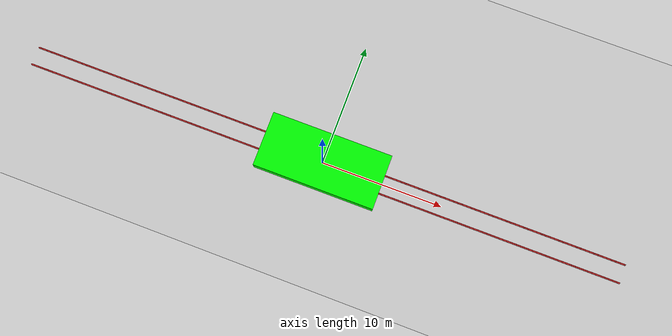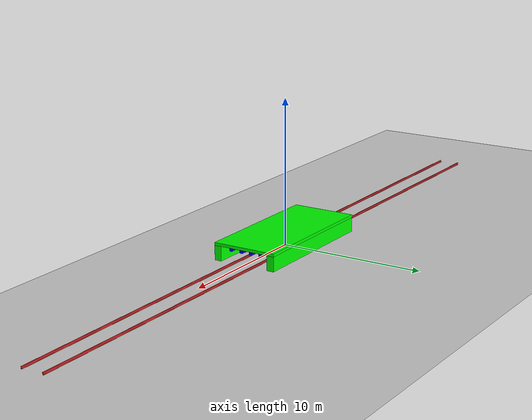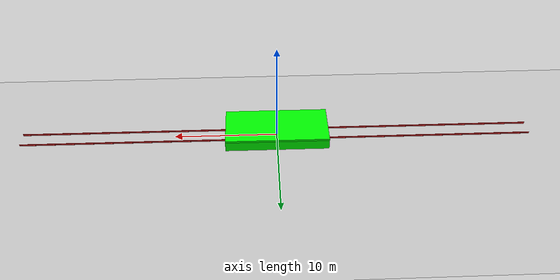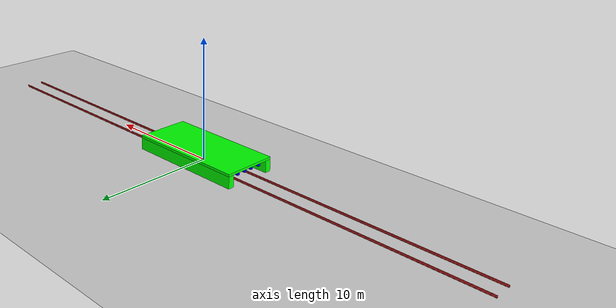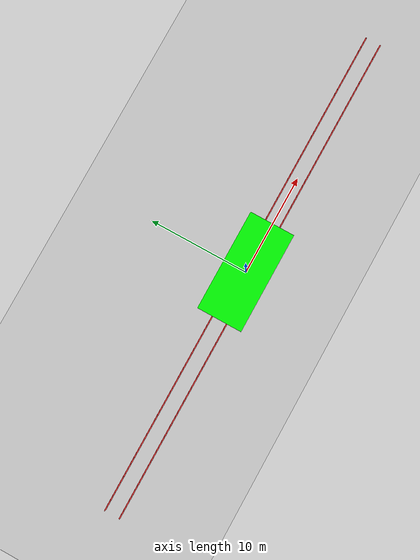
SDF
<sdf version="1.7">
 <world name="default">
  <light name="sun" type="directional">
   <pose>0 0 10 0 -0 0</pose>
   <diffuse>0.8 0.8 0.8 1</diffuse>
   <specular>0.2 0.2 0.2 1</specular>
   <attenuation>
    <range>1000</range>
    <constant>0.9</constant>
    <linear>0.01</linear>
    <quadratic>0.001</quadratic>
   </attenuation>
   <direction>-0.5 0.1 -0.9</direction>
   <spot><inner_angle>0</inner_angle><outer_angle>0</outer_angle><falloff>0</falloff></spot>
  </light>
  <model name="ground_plane">
   <static>1</static>
   <link name="link">
    <collision name="collision">
     <geometry><plane><normal>0 0 1</normal><size>100 100</size></plane></geometry>
     <surface>
      <contact><collide_bitmask>65535</collide_bitmask></contact>
      <friction><ode><mu>100</mu><mu2>50</mu2></ode></friction>
     </surface>
    </collision>
    <visual name="visual">
     <cast_shadows>0</cast_shadows>
     <geometry><plane><normal>0 0 1</normal><size>100 100</size></plane></geometry>
     <material>
      <script><uri>file://media/materials/scripts/gazebo.material</uri><name>Gazebo/Grey</name></script>
     </material>
    </visual>
   </link>
  </model>
  <gravity>0 0 -9.8</gravity>
  <magnetic_field>6e-06 2.3e-05 -4.2e-05</magnetic_field>
  <atmosphere type="adiabatic"/>
  <physics type="ode">
   <max_step_size>0.001</max_step_size>
   <real_time_factor>1</real_time_factor>
   <real_time_update_rate>1000</real_time_update_rate>
  </physics>
  <scene><ambient>0.4 0.4 0.4 1</ambient><background>0.7 0.7 0.7 1</background><shadows>1</shadows></scene>
  <spherical_coordinates>
   <surface_model>EARTH_WGS84</surface_model>
   <latitude_deg>0</latitude_deg>
   <longitude_deg>0</longitude_deg>
   <elevation>0</elevation>
   <heading_deg>0</heading_deg>
  </spherical_coordinates>
  <model name="single_track_model">
   <link name="link_0">
    <inertial>
     <mass>7800</mass>
     <inertia><ixx>1300</ixx><ixy>0</ixy><ixz>0</ixz><iyy>1300</iyy><iyz>0</iyz><izz>1300</izz></inertia>
    </inertial>
    <visual name="visual">
     <pose>0 0 0 1.5708 -0 1.5708</pose>
     <geometry>
      <mesh><uri>model://argo3_description/meshes/track.stl</uri><scale>0.001 0.001 1</scale></mesh>
     </geometry>
     <material>
      <lighting>1</lighting>
      <script><uri>file://media/materials/scripts/gazebo.material</uri><name>Gazebo/Red</name></script>
      <shader type="pixel"><normal_map>__default__</normal_map></shader>
      <ambient>1 0 0 1</ambient>
      <diffuse>0.7 0.7 0.7 1</diffuse>
      <specular>0.01 0.01 0.01 1</specular>
      <emissive>0 0 0 1</emissive>
     </material>
    </visual>
    <collision name="collision">
     <pose>0 0 0 1.5708 -0 1.5708</pose>
     <geometry>
      <mesh><uri>model://argo3_description/meshes/track.stl</uri><scale>0.001 0.001 1</scale></mesh>
     </geometry>
     <surface>
      <friction>
       <ode><mu>1</mu><mu2>1</mu2><fdir1>0 0 0</fdir1><slip1>0</slip1><slip2>0</slip2></ode>
       <torsional>
        <coefficient>1</coefficient>
        <patch_radius>0</patch_radius>
        <surface_radius>0</surface_radius>
        <use_patch_radius>1</use_patch_radius>
        <ode><slip>0</slip></ode>
       </torsional>
      </friction>
      <bounce><restitution_coefficient>0</restitution_coefficient><threshold>1e+06</threshold></bounce>
      <contact>
       <collide_without_contact>0</collide_without_contact>
       <collide_without_contact_bitmask>1</collide_without_contact_bitmask>
       <collide_bitmask>1</collide_bitmask>
       <ode>
        <soft_cfm>0</soft_cfm>
        <soft_erp>0.2</soft_erp>
        <kp>1e+13</kp>
        <kd>1</kd>
        <max_vel>0.01</max_vel>
        <min_depth>0</min_depth>
       </ode>
       <bullet>
        <split_impulse>1</split_impulse>
        <split_impulse_penetration_threshold>-0.01</split_impulse_penetration_threshold>
        <soft_cfm>0</soft_cfm>
        <soft_erp>0.2</soft_erp>
        <kp>1e+13</kp>
        <kd>1</kd>
       </bullet>
      </contact>
     </surface>
    </collision>
   </link>
   <static>1</static>
   <pose>0 0.75 0 0 -0 0</pose>
  </model>
  <model name="single_track_model_clone">
   <link name="link_0">
    <inertial>
     <mass>7800</mass>
     <inertia><ixx>1300</ixx><ixy>0</ixy><ixz>0</ixz><iyy>1300</iyy><iyz>0</iyz><izz>1300</izz></inertia>
    </inertial>
    <visual name="visual">
     <pose>0 0 0 1.5708 -0 1.5708</pose>
     <geometry>
      <mesh><uri>model://argo3_description/meshes/track.stl</uri><scale>0.001 0.001 1</scale></mesh>
     </geometry>
     <material>
      <lighting>1</lighting>
      <script><uri>file://media/materials/scripts/gazebo.material</uri><name>Gazebo/Red</name></script>
      <shader type="pixel"><normal_map>__default__</normal_map></shader>
      <ambient>1 0 0 1</ambient>
      <diffuse>0.7 0.7 0.7 1</diffuse>
      <specular>0.01 0.01 0.01 1</specular>
      <emissive>0 0 0 1</emissive>
     </material>
    </visual>
    <collision name="collision">
     <pose>0 0 0 1.5708 -0 1.5708</pose>
     <geometry>
      <mesh><uri>model://argo3_description/meshes/track.stl</uri><scale>0.001 0.001 1</scale></mesh>
     </geometry>
     <surface>
      <friction>
       <ode><mu>1</mu><mu2>1</mu2><fdir1>0 0 0</fdir1><slip1>0</slip1><slip2>0</slip2></ode>
       <torsional>
        <coefficient>1</coefficient>
        <patch_radius>0</patch_radius>
        <surface_radius>0</surface_radius>
        <use_patch_radius>1</use_patch_radius>
        <ode><slip>0</slip></ode>
       </torsional>
      </friction>
      <bounce><restitution_coefficient>0</restitution_coefficient><threshold>1e+06</threshold></bounce>
      <contact>
       <collide_without_contact>0</collide_without_contact>
       <collide_without_contact_bitmask>1</collide_without_contact_bitmask>
       <collide_bitmask>1</collide_bitmask>
       <ode>
        <soft_cfm>0</soft_cfm>
        <soft_erp>0.2</soft_erp>
        <kp>1e+13</kp>
        <kd>1</kd>
        <max_vel>0.01</max_vel>
        <min_depth>0</min_depth>
       </ode>
       <bullet>
        <split_impulse>1</split_impulse>
        <split_impulse_penetration_threshold>-0.01</split_impulse_penetration_threshold>
        <soft_cfm>0</soft_cfm>
        <soft_erp>0.2</soft_erp>
        <kp>1e+13</kp>
        <kd>1</kd>
       </bullet>
      </contact>
     </surface>
    </collision>
   </link>
   <static>1</static>
   <pose>0 -0.75 0 0 -0 0</pose>
  </model>
  <model name="low_portal_with_obstacles">
   <link name="link_0">
    <inertial>
     <mass>1</mass>
     <inertia>
      <ixx>0.166667</ixx>
      <ixy>0</ixy>
      <ixz>0</ixz>
      <iyy>0.166667</iyy>
      <iyz>0</iyz>
      <izz>0.166667</izz>
     </inertia>
    </inertial>
    <visual name="visual">
     <pose>0 2 0.5 0 -0 0</pose>
     <geometry><box><size>10 0.5 1</size></box></geometry>
     <material>
      <lighting>1</lighting>
      <script><uri>file://media/materials/scripts/gazebo.material</uri><name>Gazebo/Grey</name></script>
      <shader type="pixel"><normal_map>__default__</normal_map></shader>
      <ambient>0 1 0 1</ambient>
      <diffuse>0.7 0.7 0.7 1</diffuse>
      <specular>0.01 0.01 0.01 1</specular>
      <emissive>0 0 0 1</emissive>
     </material>
    </visual>
    <visual name="ModelPreview_2::link_0::visual_7">
     <pose>0 0.5 0.9 0 -0 0</pose>
     <geometry><box><size>10 0.2 0.2</size></box></geometry>
     <material>
      <lighting>1</lighting>
      <script><uri>file://media/materials/scripts/gazebo.material</uri><name>Gazebo/Grey</name></script>
      <shader type="pixel"><normal_map>__default__</normal_map></shader>
      <ambient>0 0 1 1</ambient>
      <diffuse>0.7 0.7 0.7 1</diffuse>
      <specular>0.01 0.01 0.01 1</specular>
      <emissive>0 0 0 1</emissive>
     </material>
    </visual>
    <visual name="ModelPreview_2::link_0::visual_3">
     <pose>0 1.25 0.9 0 -0 0</pose>
     <geometry><box><size>10 0.2 0.2</size></box></geometry>
     <material>
      <lighting>1</lighting>
      <script><uri>file://media/materials/scripts/gazebo.material</uri><name>Gazebo/Grey</name></script>
      <shader type="pixel"><normal_map>__default__</normal_map></shader>
      <ambient>0 0 1 1</ambient>
      <diffuse>0.7 0.7 0.7 1</diffuse>
      <specular>0.01 0.01 0.01 1</specular>
      <emissive>0 0 0 1</emissive>
     </material>
    </visual>
    <visual name="ModelPreview_2::link_0::visual_8">
     <pose>0 -0.2 0.9 0 -0 0</pose>
     <geometry><box><size>10 0.2 0.2</size></box></geometry>
     <material>
      <lighting>1</lighting>
      <script><uri>file://media/materials/scripts/gazebo.material</uri><name>Gazebo/Grey</name></script>
      <shader type="pixel"><normal_map>__default__</normal_map></shader>
      <ambient>0 0 1 1</ambient>
      <diffuse>0.7 0.7 0.7 1</diffuse>
      <specular>0.01 0.01 0.01 1</specular>
      <emissive>0 0 0 1</emissive>
     </material>
    </visual>
    <visual name="ModelPreview_2::link_0::visual_9">
     <pose>0 -1 0.9 0 -0 0</pose>
     <geometry><box><size>10 0.2 0.2</size></box></geometry>
     <material>
      <lighting>1</lighting>
      <script><uri>file://media/materials/scripts/gazebo.material</uri><name>Gazebo/Grey</name></script>
      <shader type="pixel"><normal_map>__default__</normal_map></shader>
      <ambient>0 0 1 1</ambient>
      <diffuse>0.7 0.7 0.7 1</diffuse>
      <specular>0.01 0.01 0.01 1</specular>
      <emissive>0 0 0 1</emissive>
     </material>
    </visual>
    <visual name="ModelPreview_2::link_0::visual_2">
     <pose>0 0 1.1 0 -0 0</pose>
     <geometry><box><size>10 4.5 0.2</size></box></geometry>
     <material>
      <lighting>1</lighting>
      <script><uri>file://media/materials/scripts/gazebo.material</uri><name>Gazebo/Grey</name></script>
      <shader type="pixel"><normal_map>__default__</normal_map></shader>
      <ambient>0 1 0 1</ambient>
      <diffuse>0.7 0.7 0.7 1</diffuse>
      <specular>0.01 0.01 0.01 1</specular>
      <emissive>0 0 0 1</emissive>
     </material>
    </visual>
    <visual name="ModelPreview_2::link_0::visual_1">
     <pose>0 -2 0.5 0 -0 0</pose>
     <geometry><box><size>10 0.5 1</size></box></geometry>
     <material>
      <lighting>1</lighting>
      <script><uri>file://media/materials/scripts/gazebo.material</uri><name>Gazebo/Grey</name></script>
      <shader type="pixel"><normal_map>__default__</normal_map></shader>
      <ambient>0 1 0 1</ambient>
      <diffuse>0.7 0.7 0.7 1</diffuse>
      <specular>0.01 0.01 0.01 1</specular>
      <emissive>0 0 0 1</emissive>
     </material>
    </visual>
   </link>
   <static>1</static>
  </model>
 </world>
</sdf>
